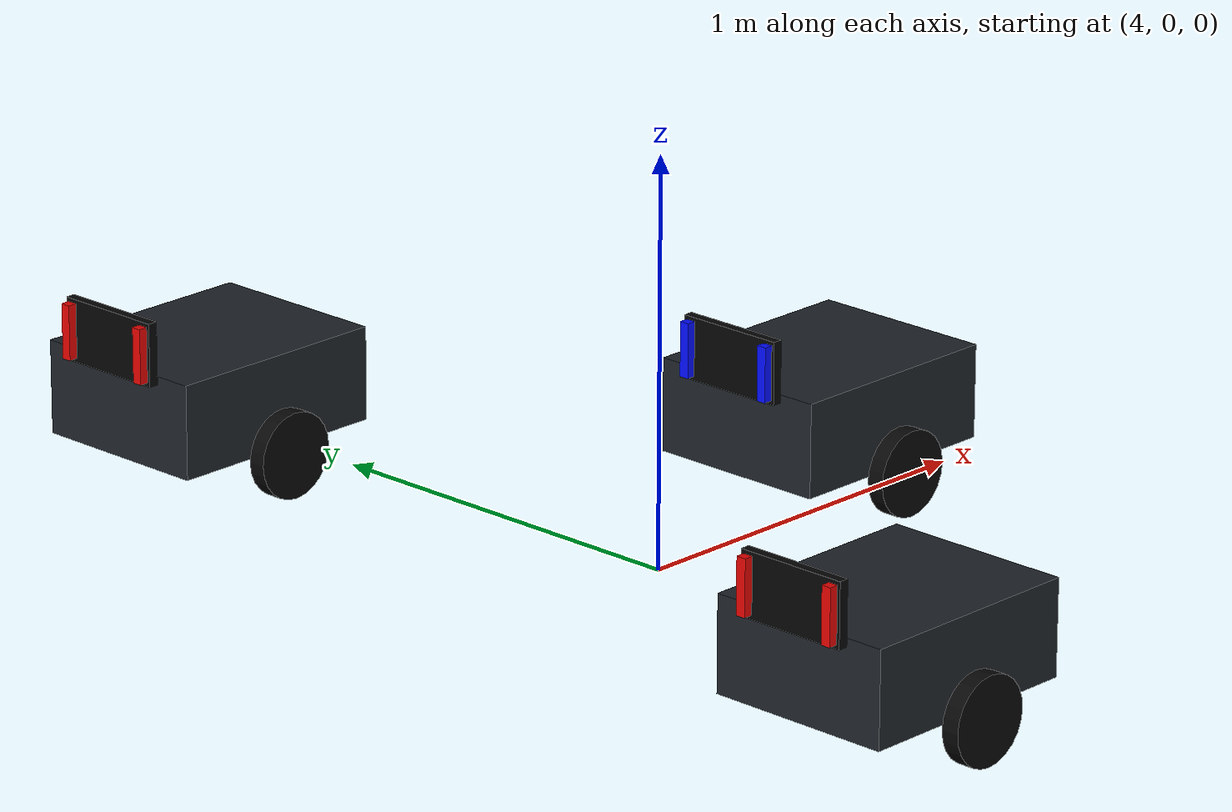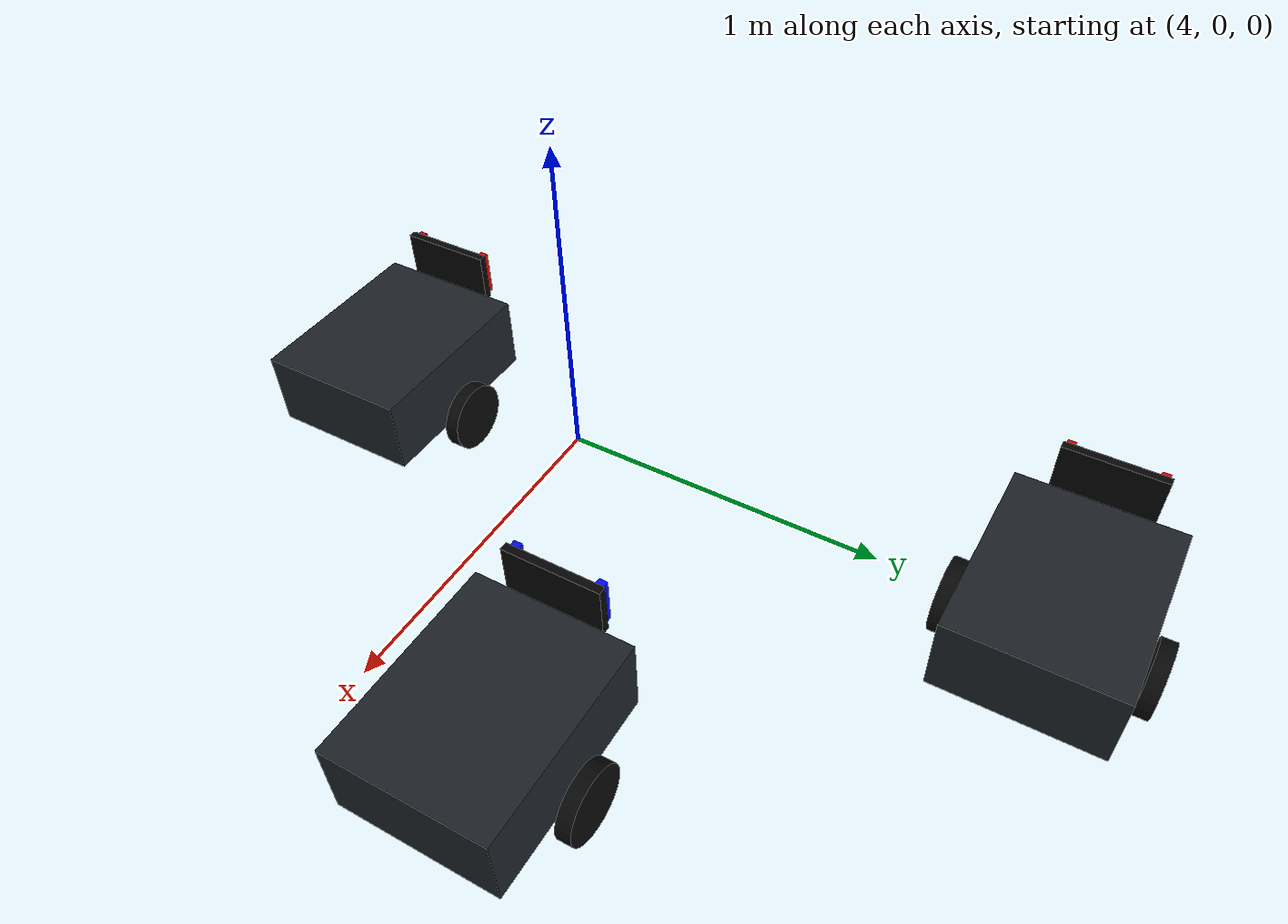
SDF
<sdf version="1.6">
 <world name="rmuc26_assessment">
  <gravity>0 0 -9.81</gravity>
  <physics type="ode">
   <max_step_size>.002</max_step_size>
   <real_time_update_rate>500</real_time_update_rate>
  </physics>
  <scene><ambient>.7 .7 .7 1</ambient><background>.8 .82 .85 1</background><shadows>false</shadows></scene>
  <model name="astra_car1">
   <pose>4 -0.7 -0.08595416269999999 0 0 0</pose>
   <link name="base_link">
    <inertial><mass>4</mass><inertia><ixx>.07</ixx><iyy>.08</iyy><izz>.1</izz></inertia></inertial>
    <visual name="body">
     <pose>0 0 .12 0 0 0</pose>
     <geometry><box><size>.6 .48 .24</size></box></geometry>
     <material>
      <ambient>.12 .14 .16 1</ambient>
      <diffuse>.12 .14 .16 1</diffuse>
      <emissive>.12 .14 .16 1</emissive>
     </material>
    </visual>
    <collision name="body">
     <pose>0 0 .12 0 0 0</pose>
     <geometry><box><size>.6 .48 .24</size></box></geometry>
    </collision>
    <visual name="plate">
     <pose>-.316 0 .3 0 0 0</pose>
     <geometry><box><size>.025 .29 .16</size></box></geometry>
     <material>
      <ambient>.02 .02 .02 1</ambient>
      <diffuse>.02 .02 .02 1</diffuse>
      <emissive>.02 .02 .02 1</emissive>
     </material>
    </visual>
    <visual name="light_-1">
     <pose>-.334 -0.125 .3 0 0 0</pose>
     <geometry><box><size>.035 .025 .14</size></box></geometry>
     <material>
      <ambient>0.9 0.02 0.01 1</ambient>
      <diffuse>0.9 0.02 0.01 1</diffuse>
      <emissive>0.9 0.02 0.01 1</emissive>
     </material>
    </visual>
    <visual name="light_1">
     <pose>-.334 0.125 .3 0 0 0</pose>
     <geometry><box><size>.035 .025 .14</size></box></geometry>
     <material>
      <ambient>0.9 0.02 0.01 1</ambient>
      <diffuse>0.9 0.02 0.01 1</diffuse>
      <emissive>0.9 0.02 0.01 1</emissive>
     </material>
    </visual>
   </link>
   <link name="left_wheel">
    <pose>0 0.28 0 1.57079632679 0 0</pose>
    <inertial><mass>.15</mass><inertia><ixx>.001</ixx><iyy>.001</iyy><izz>.001</izz></inertia></inertial>
    <visual name="wheel">
     <geometry><cylinder><radius>.11</radius><length>.045</length></cylinder></geometry>
     <material><ambient>.03 .03 .03 1</ambient><diffuse>.03 .03 .03 1</diffuse></material>
    </visual>
    <collision name="wheel">
     <geometry><cylinder><radius>.11</radius><length>.045</length></cylinder></geometry>
     <surface><friction><ode><mu>1</mu><mu2>1</mu2></ode></friction></surface>
    </collision>
   </link>
   <joint name="left_joint" type="revolute">
    <parent>base_link</parent>
    <child>left_wheel</child>
    <axis><xyz>0 0 -1</xyz><limit><lower>-1e16</lower><upper>1e16</upper></limit></axis>
   </joint>
   <link name="right_wheel">
    <pose>0 -0.28 0 1.57079632679 0 0</pose>
    <inertial><mass>.15</mass><inertia><ixx>.001</ixx><iyy>.001</iyy><izz>.001</izz></inertia></inertial>
    <visual name="wheel">
     <geometry><cylinder><radius>.11</radius><length>.045</length></cylinder></geometry>
     <material><ambient>.03 .03 .03 1</ambient><diffuse>.03 .03 .03 1</diffuse></material>
    </visual>
    <collision name="wheel">
     <geometry><cylinder><radius>.11</radius><length>.045</length></cylinder></geometry>
     <surface><friction><ode><mu>1</mu><mu2>1</mu2></ode></friction></surface>
    </collision>
   </link>
   <joint name="right_joint" type="revolute">
    <parent>base_link</parent>
    <child>right_wheel</child>
    <axis><xyz>0 0 -1</xyz><limit><lower>-1e16</lower><upper>1e16</upper></limit></axis>
   </joint>
   <link name="caster0">
    <pose>-0.22 0 -.06 0 0 0</pose>
    <inertial><mass>.01</mass><inertia><ixx>.0001</ixx><iyy>.0001</iyy><izz>.0001</izz></inertia></inertial>
    <collision name="caster">
     <geometry><sphere><radius>.05</radius></sphere></geometry>
     <surface><friction><ode><mu>0</mu><mu2>0</mu2></ode></friction></surface>
    </collision>
   </link>
   <joint name="caster0_joint" type="fixed"><parent>base_link</parent><child>caster0</child></joint>
   <link name="caster1">
    <pose>0.22 0 -.06 0 0 0</pose>
    <inertial><mass>.01</mass><inertia><ixx>.0001</ixx><iyy>.0001</iyy><izz>.0001</izz></inertia></inertial>
    <collision name="caster">
     <geometry><sphere><radius>.05</radius></sphere></geometry>
     <surface><friction><ode><mu>0</mu><mu2>0</mu2></ode></friction></surface>
    </collision>
   </link>
   <joint name="caster1_joint" type="fixed"><parent>base_link</parent><child>caster1</child></joint>
   <plugin name="drive" filename="libgazebo_ros_diff_drive.so">
    <ros><namespace>/assessment/car1</namespace></ros>
    <update_rate>50</update_rate>
    <left_joint>left_joint</left_joint>
    <right_joint>right_joint</right_joint>
    <wheel_separation>.56</wheel_separation>
    <wheel_diameter>.22</wheel_diameter>
    <max_wheel_torque>10</max_wheel_torque>
    <max_wheel_acceleration>2</max_wheel_acceleration>
    <publish_odom>true</publish_odom>
    <publish_odom_tf>true</publish_odom_tf>
    <publish_wheel_tf>false</publish_wheel_tf>
    <odometry_frame>car1/odom</odometry_frame>
    <robot_base_frame>car1/base_link</robot_base_frame>
   </plugin>
  </model>
  <model name="astra_car2">
   <pose>5 0.4 -0.057149674 0 0 0</pose>
   <link name="base_link">
    <inertial><mass>4</mass><inertia><ixx>.07</ixx><iyy>.08</iyy><izz>.1</izz></inertia></inertial>
    <visual name="body">
     <pose>0 0 .12 0 0 0</pose>
     <geometry><box><size>.6 .48 .24</size></box></geometry>
     <material>
      <ambient>.12 .14 .16 1</ambient>
      <diffuse>.12 .14 .16 1</diffuse>
      <emissive>.12 .14 .16 1</emissive>
     </material>
    </visual>
    <collision name="body">
     <pose>0 0 .12 0 0 0</pose>
     <geometry><box><size>.6 .48 .24</size></box></geometry>
    </collision>
    <visual name="plate">
     <pose>-.316 0 .3 0 0 0</pose>
     <geometry><box><size>.025 .29 .16</size></box></geometry>
     <material>
      <ambient>.02 .02 .02 1</ambient>
      <diffuse>.02 .02 .02 1</diffuse>
      <emissive>.02 .02 .02 1</emissive>
     </material>
    </visual>
    <visual name="light_-1">
     <pose>-.334 -0.125 .3 0 0 0</pose>
     <geometry><box><size>.035 .025 .14</size></box></geometry>
     <material>
      <ambient>0.01 0.05 1 1</ambient>
      <diffuse>0.01 0.05 1 1</diffuse>
      <emissive>0.01 0.05 1 1</emissive>
     </material>
    </visual>
    <visual name="light_1">
     <pose>-.334 0.125 .3 0 0 0</pose>
     <geometry><box><size>.035 .025 .14</size></box></geometry>
     <material>
      <ambient>0.01 0.05 1 1</ambient>
      <diffuse>0.01 0.05 1 1</diffuse>
      <emissive>0.01 0.05 1 1</emissive>
     </material>
    </visual>
   </link>
   <link name="left_wheel">
    <pose>0 0.28 0 1.57079632679 0 0</pose>
    <inertial><mass>.15</mass><inertia><ixx>.001</ixx><iyy>.001</iyy><izz>.001</izz></inertia></inertial>
    <visual name="wheel">
     <geometry><cylinder><radius>.11</radius><length>.045</length></cylinder></geometry>
     <material><ambient>.03 .03 .03 1</ambient><diffuse>.03 .03 .03 1</diffuse></material>
    </visual>
    <collision name="wheel">
     <geometry><cylinder><radius>.11</radius><length>.045</length></cylinder></geometry>
     <surface><friction><ode><mu>1</mu><mu2>1</mu2></ode></friction></surface>
    </collision>
   </link>
   <joint name="left_joint" type="revolute">
    <parent>base_link</parent>
    <child>left_wheel</child>
    <axis><xyz>0 0 -1</xyz><limit><lower>-1e16</lower><upper>1e16</upper></limit></axis>
   </joint>
   <link name="right_wheel">
    <pose>0 -0.28 0 1.57079632679 0 0</pose>
    <inertial><mass>.15</mass><inertia><ixx>.001</ixx><iyy>.001</iyy><izz>.001</izz></inertia></inertial>
    <visual name="wheel">
     <geometry><cylinder><radius>.11</radius><length>.045</length></cylinder></geometry>
     <material><ambient>.03 .03 .03 1</ambient><diffuse>.03 .03 .03 1</diffuse></material>
    </visual>
    <collision name="wheel">
     <geometry><cylinder><radius>.11</radius><length>.045</length></cylinder></geometry>
     <surface><friction><ode><mu>1</mu><mu2>1</mu2></ode></friction></surface>
    </collision>
   </link>
   <joint name="right_joint" type="revolute">
    <parent>base_link</parent>
    <child>right_wheel</child>
    <axis><xyz>0 0 -1</xyz><limit><lower>-1e16</lower><upper>1e16</upper></limit></axis>
   </joint>
   <link name="caster0">
    <pose>-0.22 0 -.06 0 0 0</pose>
    <inertial><mass>.01</mass><inertia><ixx>.0001</ixx><iyy>.0001</iyy><izz>.0001</izz></inertia></inertial>
    <collision name="caster">
     <geometry><sphere><radius>.05</radius></sphere></geometry>
     <surface><friction><ode><mu>0</mu><mu2>0</mu2></ode></friction></surface>
    </collision>
   </link>
   <joint name="caster0_joint" type="fixed"><parent>base_link</parent><child>caster0</child></joint>
   <link name="caster1">
    <pose>0.22 0 -.06 0 0 0</pose>
    <inertial><mass>.01</mass><inertia><ixx>.0001</ixx><iyy>.0001</iyy><izz>.0001</izz></inertia></inertial>
    <collision name="caster">
     <geometry><sphere><radius>.05</radius></sphere></geometry>
     <surface><friction><ode><mu>0</mu><mu2>0</mu2></ode></friction></surface>
    </collision>
   </link>
   <joint name="caster1_joint" type="fixed"><parent>base_link</parent><child>caster1</child></joint>
   <plugin name="drive" filename="libgazebo_ros_diff_drive.so">
    <ros><namespace>/assessment/car2</namespace></ros>
    <update_rate>50</update_rate>
    <left_joint>left_joint</left_joint>
    <right_joint>right_joint</right_joint>
    <wheel_separation>.56</wheel_separation>
    <wheel_diameter>.22</wheel_diameter>
    <max_wheel_torque>10</max_wheel_torque>
    <max_wheel_acceleration>2</max_wheel_acceleration>
    <publish_odom>true</publish_odom>
    <publish_odom_tf>true</publish_odom_tf>
    <publish_wheel_tf>false</publish_wheel_tf>
    <odometry_frame>car2/odom</odometry_frame>
    <robot_base_frame>car2/base_link</robot_base_frame>
   </plugin>
  </model>
  <model name="astra_car3">
   <pose>4 1.5 -0.02834518030000001 0 0 0</pose>
   <link name="base_link">
    <inertial><mass>4</mass><inertia><ixx>.07</ixx><iyy>.08</iyy><izz>.1</izz></inertia></inertial>
    <visual name="body">
     <pose>0 0 .12 0 0 0</pose>
     <geometry><box><size>.6 .48 .24</size></box></geometry>
     <material>
      <ambient>.12 .14 .16 1</ambient>
      <diffuse>.12 .14 .16 1</diffuse>
      <emissive>.12 .14 .16 1</emissive>
     </material>
    </visual>
    <collision name="body">
     <pose>0 0 .12 0 0 0</pose>
     <geometry><box><size>.6 .48 .24</size></box></geometry>
    </collision>
    <visual name="plate">
     <pose>-.316 0 .3 0 0 0</pose>
     <geometry><box><size>.025 .29 .16</size></box></geometry>
     <material>
      <ambient>.02 .02 .02 1</ambient>
      <diffuse>.02 .02 .02 1</diffuse>
      <emissive>.02 .02 .02 1</emissive>
     </material>
    </visual>
    <visual name="light_-1">
     <pose>-.334 -0.125 .3 0 0 0</pose>
     <geometry><box><size>.035 .025 .14</size></box></geometry>
     <material>
      <ambient>0.9 0.02 0.01 1</ambient>
      <diffuse>0.9 0.02 0.01 1</diffuse>
      <emissive>0.9 0.02 0.01 1</emissive>
     </material>
    </visual>
    <visual name="light_1">
     <pose>-.334 0.125 .3 0 0 0</pose>
     <geometry><box><size>.035 .025 .14</size></box></geometry>
     <material>
      <ambient>0.9 0.02 0.01 1</ambient>
      <diffuse>0.9 0.02 0.01 1</diffuse>
      <emissive>0.9 0.02 0.01 1</emissive>
     </material>
    </visual>
   </link>
   <link name="left_wheel">
    <pose>0 0.28 0 1.57079632679 0 0</pose>
    <inertial><mass>.15</mass><inertia><ixx>.001</ixx><iyy>.001</iyy><izz>.001</izz></inertia></inertial>
    <visual name="wheel">
     <geometry><cylinder><radius>.11</radius><length>.045</length></cylinder></geometry>
     <material><ambient>.03 .03 .03 1</ambient><diffuse>.03 .03 .03 1</diffuse></material>
    </visual>
    <collision name="wheel">
     <geometry><cylinder><radius>.11</radius><length>.045</length></cylinder></geometry>
     <surface><friction><ode><mu>1</mu><mu2>1</mu2></ode></friction></surface>
    </collision>
   </link>
   <joint name="left_joint" type="revolute">
    <parent>base_link</parent>
    <child>left_wheel</child>
    <axis><xyz>0 0 -1</xyz><limit><lower>-1e16</lower><upper>1e16</upper></limit></axis>
   </joint>
   <link name="right_wheel">
    <pose>0 -0.28 0 1.57079632679 0 0</pose>
    <inertial><mass>.15</mass><inertia><ixx>.001</ixx><iyy>.001</iyy><izz>.001</izz></inertia></inertial>
    <visual name="wheel">
     <geometry><cylinder><radius>.11</radius><length>.045</length></cylinder></geometry>
     <material><ambient>.03 .03 .03 1</ambient><diffuse>.03 .03 .03 1</diffuse></material>
    </visual>
    <collision name="wheel">
     <geometry><cylinder><radius>.11</radius><length>.045</length></cylinder></geometry>
     <surface><friction><ode><mu>1</mu><mu2>1</mu2></ode></friction></surface>
    </collision>
   </link>
   <joint name="right_joint" type="revolute">
    <parent>base_link</parent>
    <child>right_wheel</child>
    <axis><xyz>0 0 -1</xyz><limit><lower>-1e16</lower><upper>1e16</upper></limit></axis>
   </joint>
   <link name="caster0">
    <pose>-0.22 0 -.06 0 0 0</pose>
    <inertial><mass>.01</mass><inertia><ixx>.0001</ixx><iyy>.0001</iyy><izz>.0001</izz></inertia></inertial>
    <collision name="caster">
     <geometry><sphere><radius>.05</radius></sphere></geometry>
     <surface><friction><ode><mu>0</mu><mu2>0</mu2></ode></friction></surface>
    </collision>
   </link>
   <joint name="caster0_joint" type="fixed"><parent>base_link</parent><child>caster0</child></joint>
   <link name="caster1">
    <pose>0.22 0 -.06 0 0 0</pose>
    <inertial><mass>.01</mass><inertia><ixx>.0001</ixx><iyy>.0001</iyy><izz>.0001</izz></inertia></inertial>
    <collision name="caster">
     <geometry><sphere><radius>.05</radius></sphere></geometry>
     <surface><friction><ode><mu>0</mu><mu2>0</mu2></ode></friction></surface>
    </collision>
   </link>
   <joint name="caster1_joint" type="fixed"><parent>base_link</parent><child>caster1</child></joint>
   <plugin name="drive" filename="libgazebo_ros_diff_drive.so">
    <ros><namespace>/assessment/car3</namespace></ros>
    <update_rate>50</update_rate>
    <left_joint>left_joint</left_joint>
    <right_joint>right_joint</right_joint>
    <wheel_separation>.56</wheel_separation>
    <wheel_diameter>.22</wheel_diameter>
    <max_wheel_torque>10</max_wheel_torque>
    <max_wheel_acceleration>2</max_wheel_acceleration>
    <publish_odom>true</publish_odom>
    <publish_odom_tf>true</publish_odom_tf>
    <publish_wheel_tf>false</publish_wheel_tf>
    <odometry_frame>car3/odom</odometry_frame>
    <robot_base_frame>car3/base_link</robot_base_frame>
   </plugin>
  </model>
  <model name="astra_sensor_rig">
   <static>true</static>
   <pose>0 0.4 -0.1691496849 0 0 0</pose>
   <link name="rig">
    <sensor name="camera" type="camera">
     <pose>0 0 .41 0 0 0</pose>
     <always_on>true</always_on>
     <update_rate>10</update_rate>
     <camera>
      <horizontal_fov>1.0471975511965976</horizontal_fov>
      <image><width>640</width><height>480</height><format>R8G8B8</format></image>
      <clip><near>0.1</near><far>100</far></clip>
     </camera>
     <plugin name="camera" filename="libgazebo_ros_camera.so">
      <ros>
       <namespace>/assessment</namespace>
       <remapping>image_raw:=camera/image_raw</remapping>
       <remapping>camera_info:=camera/camera_info</remapping>
      </ros>
      <camera_name>camera</camera_name>
      <frame_name>astra_camera_optical</frame_name>
     </plugin>
    </sensor>
    <sensor name="lidar" type="ray">
     <pose>0 0 .27 0 0 0</pose>
     <always_on>true</always_on>
     <update_rate>10</update_rate>
     <ray>
      <scan>
       <horizontal>
        <samples>50</samples>
        <resolution>1</resolution>
        <min_angle>-0.6143558967020041</min_angle>
        <max_angle>0.6143558967020041</max_angle>
       </horizontal>
       <vertical>
        <samples>1</samples>
        <resolution>1</resolution>
        <min_angle>0</min_angle>
        <max_angle>0</max_angle>
       </vertical>
      </scan>
      <range><min>0.05</min><max>90</max><resolution>0.01</resolution></range>
      <noise><type>gaussian</type><mean>0</mean><stddev>.003</stddev></noise>
     </ray>
     <plugin name="lidar" filename="libgazebo_ros_ray_sensor.so">
      <ros><namespace>/assessment</namespace><remapping>~/out:=lidar/scan</remapping></ros>
      <output_type>sensor_msgs/LaserScan</output_type>
      <frame_name>astra_lidar</frame_name>
     </plugin>
    </sensor>
   </link>
  </model>
  <model name="astra_overview">
   <static>true</static>
   <link name="camera">
    <pose>10 2.624344 40 0 1.57079632679 0</pose>
    <sensor name="overview" type="camera">
     <always_on>true</always_on>
     <update_rate>10</update_rate>
     <camera>
      <horizontal_fov>1.0471975511965976</horizontal_fov>
      <image><width>640</width><height>480</height><format>R8G8B8</format></image>
      <clip><near>0.1</near><far>100</far></clip>
     </camera>
     <plugin name="overview" filename="libgazebo_ros_camera.so">
      <ros><namespace>/assessment/overview</namespace></ros>
      <camera_name>overview</camera_name>
      <frame_name>astra_overview</frame_name>
     </plugin>
    </sensor>
   </link>
  </model>
  <light name="assessment_sun" type="directional">
   <pose>0 0 10 0 0 0</pose>
   <diffuse>0.7 0.7 0.7 1</diffuse>
   <direction>-0.2 0.1 -1</direction>
  </light>
  <plugin name="assessment_state" filename="libgazebo_ros_state.so">
   <ros><namespace>/assessment</namespace></ros>
   <update_rate>30</update_rate>
  </plugin>
 </world>
</sdf>
